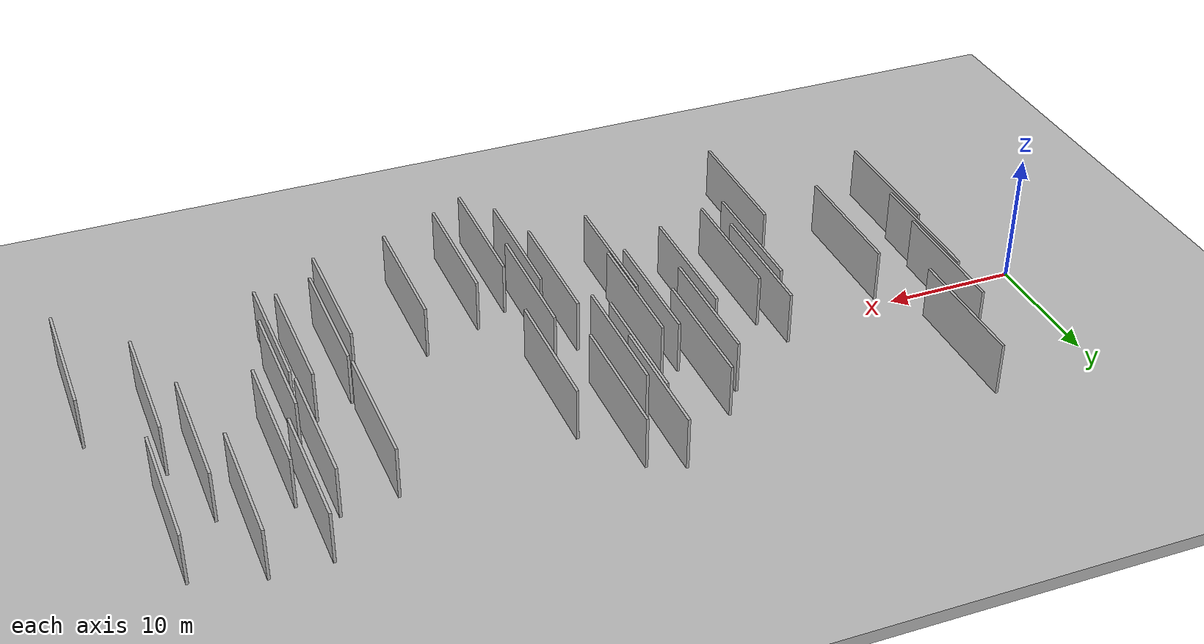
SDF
<?xml version="1.0" encoding="utf-8"?>

<sdf version="1.6">

   <world name="default">

      <gui fullscreen="0">

         <camera name="user_camera">

            <pose>-15 0 4.57585 0 0 0</pose>

            <view_controller>orbit</view_controller>

         </camera>

      </gui>

      <scene>

         <sky>

           <clouds>

             <speed>12</speed>

           </clouds>

         </sky>

         <ambient>0.4 0.4 0.4 1</ambient>

         <background>0.7 0.7 0.7 1</background>

         <shadows>1</shadows>

      </scene>

      <gravity>0 0 -9.8066</gravity>

      <magnetic_field>6e-06 2.3e-05 -4.2e-05</magnetic_field>

      <physics default="0" name="default_physics" type="ode">

         <ode>

            <solver>

               <type>quick</type>

               <iters>10</iters>

               <sor>1.0</sor>

               <use_dynamic_moi_rescaling>0</use_dynamic_moi_rescaling>

            </solver>

            <constraints>

               <cfm>0</cfm>

               <erp>0.2</erp>

               <contact_max_correcting_vel>100</contact_max_correcting_vel>

               <contact_surface_layer>0.001</contact_surface_layer>

            </constraints>

         </ode>

         <max_step_size>0.004</max_step_size>

         <real_time_factor>1</real_time_factor>

         <real_time_update_rate>250</real_time_update_rate>

      </physics>

      <light name="sun" type="directional">

         <cast_shadows>1</cast_shadows>

         <pose>0 0 10 0 0 0</pose>

         <diffuse>0.8 0.8 0.8 1</diffuse>

         <specular>0.2 0.2 0.2 1</specular>

         <attenuation>

            <range>1000</range>

            <constant>0.9</constant>

            <linear>0.01</linear>

            <quadratic>0.001</quadratic>

         </attenuation>

         <direction>-0.5 0.1 -0.9</direction>

      </light>

      <include>

         <name>ground_plane_1</name>

         <uri>model://HANNAS_ground_plane</uri>

         <pose>0 0 0  0 0 0</pose>

      </include>

      <include>

         <name>ground_plane_2</name>

         <uri>model://HANNAS_ground_plane</uri>

         <pose>100 0 0  0 0 0</pose>

      </include>

      <model name="HANNAS_wall_1">

         <static>1</static>

         <pose frame="">37.4780 -3.7580 2.5 0.000000 0.000000 1.570796</pose>

         <link name="link">

            <pose frame="">0 0 2.00 0 0 0</pose>

            <collision name="collision">

               <geometry>

                  <box>

                     <size>10.00 0.2 4.00</size>

                  </box>

               </geometry>

               <max_contacts>10</max_contacts>

               <surface>

                  <contact>

                     <ode/>

                  </contact>

                  <bounce/>

                  <friction>

                     <torsional>

                        <ode/>

                     </torsional>

                     <ode/>

                  </friction>

               </surface>

            </collision>

            <visual name="visual">

               <cast_shadows>0</cast_shadows>

               <geometry>

                  <box>

                     <size>10.00 0.2 4.00</size>

                  </box>

               </geometry>

               <material>

                  <script>

                     <uri>model://HANNAS_wall/materials/scripts</uri>

                     <uri>model://HANNAS_wall/materials/textures</uri>

                     <name>vrc/HANNAS_wall</name>

                  </script>

               </material>

            </visual>

            <self_collide>0</self_collide>

            <enable_wind>0</enable_wind>

            <kinematic>0</kinematic>

         </link>

      </model>

      <model name="HANNAS_wall_2">

         <static>1</static>

         <pose frame="">55.8400 6.3939 2.5 0.000000 0.000000 1.570796</pose>

         <link name="link">

            <pose frame="">0 0 2.00 0 0 0</pose>

            <collision name="collision">

               <geometry>

                  <box>

                     <size>10.00 0.2 4.00</size>

                  </box>

               </geometry>

               <max_contacts>10</max_contacts>

               <surface>

                  <contact>

                     <ode/>

                  </contact>

                  <bounce/>

                  <friction>

                     <torsional>

                        <ode/>

                     </torsional>

                     <ode/>

                  </friction>

               </surface>

            </collision>

            <visual name="visual">

               <cast_shadows>0</cast_shadows>

               <geometry>

                  <box>

                     <size>10.00 0.2 4.00</size>

                  </box>

               </geometry>

               <material>

                  <script>

                     <uri>model://HANNAS_wall/materials/scripts</uri>

                     <uri>model://HANNAS_wall/materials/textures</uri>

                     <name>vrc/HANNAS_wall</name>

                  </script>

               </material>

            </visual>

            <self_collide>0</self_collide>

            <enable_wind>0</enable_wind>

            <kinematic>0</kinematic>

         </link>

      </model>

      <model name="HANNAS_wall_3">

         <static>1</static>

         <pose frame="">20.4294 -3.2497 2.5 0.000000 0.000000 1.570796</pose>

         <link name="link">

            <pose frame="">0 0 2.00 0 0 0</pose>

            <collision name="collision">

               <geometry>

                  <box>

                     <size>10.00 0.2 4.00</size>

                  </box>

               </geometry>

               <max_contacts>10</max_contacts>

               <surface>

                  <contact>

                     <ode/>

                  </contact>

                  <bounce/>

                  <friction>

                     <torsional>

                        <ode/>

                     </torsional>

                     <ode/>

                  </friction>

               </surface>

            </collision>

            <visual name="visual">

               <cast_shadows>0</cast_shadows>

               <geometry>

                  <box>

                     <size>10.00 0.2 4.00</size>

                  </box>

               </geometry>

               <material>

                  <script>

                     <uri>model://HANNAS_wall/materials/scripts</uri>

                     <uri>model://HANNAS_wall/materials/textures</uri>

                     <name>vrc/HANNAS_wall</name>

                  </script>

               </material>

            </visual>

            <self_collide>0</self_collide>

            <enable_wind>0</enable_wind>

            <kinematic>0</kinematic>

         </link>

      </model>

      <model name="HANNAS_wall_4">

         <static>1</static>

         <pose frame="">21.1500 -0.2173 2.5 0.000000 0.000000 1.570796</pose>

         <link name="link">

            <pose frame="">0 0 2.00 0 0 0</pose>

            <collision name="collision">

               <geometry>

                  <box>

                     <size>10.00 0.2 4.00</size>

                  </box>

               </geometry>

               <max_contacts>10</max_contacts>

               <surface>

                  <contact>

                     <ode/>

                  </contact>

                  <bounce/>

                  <friction>

                     <torsional>

                        <ode/>

                     </torsional>

                     <ode/>

                  </friction>

               </surface>

            </collision>

            <visual name="visual">

               <cast_shadows>0</cast_shadows>

               <geometry>

                  <box>

                     <size>10.00 0.2 4.00</size>

                  </box>

               </geometry>

               <material>

                  <script>

                     <uri>model://HANNAS_wall/materials/scripts</uri>

                     <uri>model://HANNAS_wall/materials/textures</uri>

                     <name>vrc/HANNAS_wall</name>

                  </script>

               </material>

            </visual>

            <self_collide>0</self_collide>

            <enable_wind>0</enable_wind>

            <kinematic>0</kinematic>

         </link>

      </model>

      <model name="HANNAS_wall_5">

         <static>1</static>

         <pose frame="">33.4756 9.9640 2.5 0.000000 0.000000 1.570796</pose>

         <link name="link">

            <pose frame="">0 0 2.00 0 0 0</pose>

            <collision name="collision">

               <geometry>

                  <box>

                     <size>10.00 0.2 4.00</size>

                  </box>

               </geometry>

               <max_contacts>10</max_contacts>

               <surface>

                  <contact>

                     <ode/>

                  </contact>

                  <bounce/>

                  <friction>

                     <torsional>

                        <ode/>

                     </torsional>

                     <ode/>

                  </friction>

               </surface>

            </collision>

            <visual name="visual">

               <cast_shadows>0</cast_shadows>

               <geometry>

                  <box>

                     <size>10.00 0.2 4.00</size>

                  </box>

               </geometry>

               <material>

                  <script>

                     <uri>model://HANNAS_wall/materials/scripts</uri>

                     <uri>model://HANNAS_wall/materials/textures</uri>

                     <name>vrc/HANNAS_wall</name>

                  </script>

               </material>

            </visual>

            <self_collide>0</self_collide>

            <enable_wind>0</enable_wind>

            <kinematic>0</kinematic>

         </link>

      </model>

      <model name="HANNAS_wall_6">

         <static>1</static>

         <pose frame="">35.3868 -4.7499 2.5 0.000000 0.000000 1.570796</pose>

         <link name="link">

            <pose frame="">0 0 2.00 0 0 0</pose>

            <collision name="collision">

               <geometry>

                  <box>

                     <size>10.00 0.2 4.00</size>

                  </box>

               </geometry>

               <max_contacts>10</max_contacts>

               <surface>

                  <contact>

                     <ode/>

                  </contact>

                  <bounce/>

                  <friction>

                     <torsional>

                        <ode/>

                     </torsional>

                     <ode/>

                  </friction>

               </surface>

            </collision>

            <visual name="visual">

               <cast_shadows>0</cast_shadows>

               <geometry>

                  <box>

                     <size>10.00 0.2 4.00</size>

                  </box>

               </geometry>

               <material>

                  <script>

                     <uri>model://HANNAS_wall/materials/scripts</uri>

                     <uri>model://HANNAS_wall/materials/textures</uri>

                     <name>vrc/HANNAS_wall</name>

                  </script>

               </material>

            </visual>

            <self_collide>0</self_collide>

            <enable_wind>0</enable_wind>

            <kinematic>0</kinematic>

         </link>

      </model>

      <model name="HANNAS_wall_7">

         <static>1</static>

         <pose frame="">63.2526 3.9304 2.5 0.000000 0.000000 1.570796</pose>

         <link name="link">

            <pose frame="">0 0 2.00 0 0 0</pose>

            <collision name="collision">

               <geometry>

                  <box>

                     <size>10.00 0.2 4.00</size>

                  </box>

               </geometry>

               <max_contacts>10</max_contacts>

               <surface>

                  <contact>

                     <ode/>

                  </contact>

                  <bounce/>

                  <friction>

                     <torsional>

                        <ode/>

                     </torsional>

                     <ode/>

                  </friction>

               </surface>

            </collision>

            <visual name="visual">

               <cast_shadows>0</cast_shadows>

               <geometry>

                  <box>

                     <size>10.00 0.2 4.00</size>

                  </box>

               </geometry>

               <material>

                  <script>

                     <uri>model://HANNAS_wall/materials/scripts</uri>

                     <uri>model://HANNAS_wall/materials/textures</uri>

                     <name>vrc/HANNAS_wall</name>

                  </script>

               </material>

            </visual>

            <self_collide>0</self_collide>

            <enable_wind>0</enable_wind>

            <kinematic>0</kinematic>

         </link>

      </model>

      <model name="HANNAS_wall_8">

         <static>1</static>

         <pose frame="">51.0187 -7.0638 2.5 0.000000 0.000000 1.570796</pose>

         <link name="link">

            <pose frame="">0 0 2.00 0 0 0</pose>

            <collision name="collision">

               <geometry>

                  <box>

                     <size>10.00 0.2 4.00</size>

                  </box>

               </geometry>

               <max_contacts>10</max_contacts>

               <surface>

                  <contact>

                     <ode/>

                  </contact>

                  <bounce/>

                  <friction>

                     <torsional>

                        <ode/>

                     </torsional>

                     <ode/>

                  </friction>

               </surface>

            </collision>

            <visual name="visual">

               <cast_shadows>0</cast_shadows>

               <geometry>

                  <box>

                     <size>10.00 0.2 4.00</size>

                  </box>

               </geometry>

               <material>

                  <script>

                     <uri>model://HANNAS_wall/materials/scripts</uri>

                     <uri>model://HANNAS_wall/materials/textures</uri>

                     <name>vrc/HANNAS_wall</name>

                  </script>

               </material>

            </visual>

            <self_collide>0</self_collide>

            <enable_wind>0</enable_wind>

            <kinematic>0</kinematic>

         </link>

      </model>

      <model name="HANNAS_wall_9">

         <static>1</static>

         <pose frame="">58.2445 4.4541 2.5 0.000000 0.000000 1.570796</pose>

         <link name="link">

            <pose frame="">0 0 2.00 0 0 0</pose>

            <collision name="collision">

               <geometry>

                  <box>

                     <size>10.00 0.2 4.00</size>

                  </box>

               </geometry>

               <max_contacts>10</max_contacts>

               <surface>

                  <contact>

                     <ode/>

                  </contact>

                  <bounce/>

                  <friction>

                     <torsional>

                        <ode/>

                     </torsional>

                     <ode/>

                  </friction>

               </surface>

            </collision>

            <visual name="visual">

               <cast_shadows>0</cast_shadows>

               <geometry>

                  <box>

                     <size>10.00 0.2 4.00</size>

                  </box>

               </geometry>

               <material>

                  <script>

                     <uri>model://HANNAS_wall/materials/scripts</uri>

                     <uri>model://HANNAS_wall/materials/textures</uri>

                     <name>vrc/HANNAS_wall</name>

                  </script>

               </material>

            </visual>

            <self_collide>0</self_collide>

            <enable_wind>0</enable_wind>

            <kinematic>0</kinematic>

         </link>

      </model>

      <model name="HANNAS_wall_10">

         <static>1</static>

         <pose frame="">51.8081 5.9082 2.5 0.000000 0.000000 1.570796</pose>

         <link name="link">

            <pose frame="">0 0 2.00 0 0 0</pose>

            <collision name="collision">

               <geometry>

                  <box>

                     <size>10.00 0.2 4.00</size>

                  </box>

               </geometry>

               <max_contacts>10</max_contacts>

               <surface>

                  <contact>

                     <ode/>

                  </contact>

                  <bounce/>

                  <friction>

                     <torsional>

                        <ode/>

                     </torsional>

                     <ode/>

                  </friction>

               </surface>

            </collision>

            <visual name="visual">

               <cast_shadows>0</cast_shadows>

               <geometry>

                  <box>

                     <size>10.00 0.2 4.00</size>

                  </box>

               </geometry>

               <material>

                  <script>

                     <uri>model://HANNAS_wall/materials/scripts</uri>

                     <uri>model://HANNAS_wall/materials/textures</uri>

                     <name>vrc/HANNAS_wall</name>

                  </script>

               </material>

            </visual>

            <self_collide>0</self_collide>

            <enable_wind>0</enable_wind>

            <kinematic>0</kinematic>

         </link>

      </model>

      <model name="HANNAS_wall_11">

         <static>1</static>

         <pose frame="">38.6336 -11.0143 2.5 0.000000 0.000000 1.570796</pose>

         <link name="link">

            <pose frame="">0 0 2.00 0 0 0</pose>

            <collision name="collision">

               <geometry>

                  <box>

                     <size>10.00 0.2 4.00</size>

                  </box>

               </geometry>

               <max_contacts>10</max_contacts>

               <surface>

                  <contact>

                     <ode/>

                  </contact>

                  <bounce/>

                  <friction>

                     <torsional>

                        <ode/>

                     </torsional>

                     <ode/>

                  </friction>

               </surface>

            </collision>

            <visual name="visual">

               <cast_shadows>0</cast_shadows>

               <geometry>

                  <box>

                     <size>10.00 0.2 4.00</size>

                  </box>

               </geometry>

               <material>

                  <script>

                     <uri>model://HANNAS_wall/materials/scripts</uri>

                     <uri>model://HANNAS_wall/materials/textures</uri>

                     <name>vrc/HANNAS_wall</name>

                  </script>

               </material>

            </visual>

            <self_collide>0</self_collide>

            <enable_wind>0</enable_wind>

            <kinematic>0</kinematic>

         </link>

      </model>

      <model name="HANNAS_wall_12">

         <static>1</static>

         <pose frame="">34.1022 4.6095 2.5 0.000000 0.000000 1.570796</pose>

         <link name="link">

            <pose frame="">0 0 2.00 0 0 0</pose>

            <collision name="collision">

               <geometry>

                  <box>

                     <size>10.00 0.2 4.00</size>

                  </box>

               </geometry>

               <max_contacts>10</max_contacts>

               <surface>

                  <contact>

                     <ode/>

                  </contact>

                  <bounce/>

                  <friction>

                     <torsional>

                        <ode/>

                     </torsional>

                     <ode/>

                  </friction>

               </surface>

            </collision>

            <visual name="visual">

               <cast_shadows>0</cast_shadows>

               <geometry>

                  <box>

                     <size>10.00 0.2 4.00</size>

                  </box>

               </geometry>

               <material>

                  <script>

                     <uri>model://HANNAS_wall/materials/scripts</uri>

                     <uri>model://HANNAS_wall/materials/textures</uri>

                     <name>vrc/HANNAS_wall</name>

                  </script>

               </material>

            </visual>

            <self_collide>0</self_collide>

            <enable_wind>0</enable_wind>

            <kinematic>0</kinematic>

         </link>

      </model>

      <model name="HANNAS_wall_13">

         <static>1</static>

         <pose frame="">56.4788 -0.9302 2.5 0.000000 0.000000 1.570796</pose>

         <link name="link">

            <pose frame="">0 0 2.00 0 0 0</pose>

            <collision name="collision">

               <geometry>

                  <box>

                     <size>10.00 0.2 4.00</size>

                  </box>

               </geometry>

               <max_contacts>10</max_contacts>

               <surface>

                  <contact>

                     <ode/>

                  </contact>

                  <bounce/>

                  <friction>

                     <torsional>

                        <ode/>

                     </torsional>

                     <ode/>

                  </friction>

               </surface>

            </collision>

            <visual name="visual">

               <cast_shadows>0</cast_shadows>

               <geometry>

                  <box>

                     <size>10.00 0.2 4.00</size>

                  </box>

               </geometry>

               <material>

                  <script>

                     <uri>model://HANNAS_wall/materials/scripts</uri>

                     <uri>model://HANNAS_wall/materials/textures</uri>

                     <name>vrc/HANNAS_wall</name>

                  </script>

               </material>

            </visual>

            <self_collide>0</self_collide>

            <enable_wind>0</enable_wind>

            <kinematic>0</kinematic>

         </link>

      </model>

      <model name="HANNAS_wall_14">

         <static>1</static>

         <pose frame="">8.4726 4.3426 2.5 0.000000 0.000000 1.570796</pose>

         <link name="link">

            <pose frame="">0 0 2.00 0 0 0</pose>

            <collision name="collision">

               <geometry>

                  <box>

                     <size>10.00 0.2 4.00</size>

                  </box>

               </geometry>

               <max_contacts>10</max_contacts>

               <surface>

                  <contact>

                     <ode/>

                  </contact>

                  <bounce/>

                  <friction>

                     <torsional>

                        <ode/>

                     </torsional>

                     <ode/>

                  </friction>

               </surface>

            </collision>

            <visual name="visual">

               <cast_shadows>0</cast_shadows>

               <geometry>

                  <box>

                     <size>10.00 0.2 4.00</size>

                  </box>

               </geometry>

               <material>

                  <script>

                     <uri>model://HANNAS_wall/materials/scripts</uri>

                     <uri>model://HANNAS_wall/materials/textures</uri>

                     <name>vrc/HANNAS_wall</name>

                  </script>

               </material>

            </visual>

            <self_collide>0</self_collide>

            <enable_wind>0</enable_wind>

            <kinematic>0</kinematic>

         </link>

      </model>

      <model name="HANNAS_wall_15">

         <static>1</static>

         <pose frame="">10.5096 10.3762 2.5 0.000000 0.000000 1.570796</pose>

         <link name="link">

            <pose frame="">0 0 2.00 0 0 0</pose>

            <collision name="collision">

               <geometry>

                  <box>

                     <size>10.00 0.2 4.00</size>

                  </box>

               </geometry>

               <max_contacts>10</max_contacts>

               <surface>

                  <contact>

                     <ode/>

                  </contact>

                  <bounce/>

                  <friction>

                     <torsional>

                        <ode/>

                     </torsional>

                     <ode/>

                  </friction>

               </surface>

            </collision>

            <visual name="visual">

               <cast_shadows>0</cast_shadows>

               <geometry>

                  <box>

                     <size>10.00 0.2 4.00</size>

                  </box>

               </geometry>

               <material>

                  <script>

                     <uri>model://HANNAS_wall/materials/scripts</uri>

                     <uri>model://HANNAS_wall/materials/textures</uri>

                     <name>vrc/HANNAS_wall</name>

                  </script>

               </material>

            </visual>

            <self_collide>0</self_collide>

            <enable_wind>0</enable_wind>

            <kinematic>0</kinematic>

         </link>

      </model>

      <model name="HANNAS_wall_16">

         <static>1</static>

         <pose frame="">51.9081 -4.6884 2.5 0.000000 0.000000 1.570796</pose>

         <link name="link">

            <pose frame="">0 0 2.00 0 0 0</pose>

            <collision name="collision">

               <geometry>

                  <box>

                     <size>10.00 0.2 4.00</size>

                  </box>

               </geometry>

               <max_contacts>10</max_contacts>

               <surface>

                  <contact>

                     <ode/>

                  </contact>

                  <bounce/>

                  <friction>

                     <torsional>

                        <ode/>

                     </torsional>

                     <ode/>

                  </friction>

               </surface>

            </collision>

            <visual name="visual">

               <cast_shadows>0</cast_shadows>

               <geometry>

                  <box>

                     <size>10.00 0.2 4.00</size>

                  </box>

               </geometry>

               <material>

                  <script>

                     <uri>model://HANNAS_wall/materials/scripts</uri>

                     <uri>model://HANNAS_wall/materials/textures</uri>

                     <name>vrc/HANNAS_wall</name>

                  </script>

               </material>

            </visual>

            <self_collide>0</self_collide>

            <enable_wind>0</enable_wind>

            <kinematic>0</kinematic>

         </link>

      </model>

      <model name="HANNAS_wall_17">

         <static>1</static>

         <pose frame="">39.0416 4.5276 2.5 0.000000 0.000000 1.570796</pose>

         <link name="link">

            <pose frame="">0 0 2.00 0 0 0</pose>

            <collision name="collision">

               <geometry>

                  <box>

                     <size>10.00 0.2 4.00</size>

                  </box>

               </geometry>

               <max_contacts>10</max_contacts>

               <surface>

                  <contact>

                     <ode/>

                  </contact>

                  <bounce/>

                  <friction>

                     <torsional>

                        <ode/>

                     </torsional>

                     <ode/>

                  </friction>

               </surface>

            </collision>

            <visual name="visual">

               <cast_shadows>0</cast_shadows>

               <geometry>

                  <box>

                     <size>10.00 0.2 4.00</size>

                  </box>

               </geometry>

               <material>

                  <script>

                     <uri>model://HANNAS_wall/materials/scripts</uri>

                     <uri>model://HANNAS_wall/materials/textures</uri>

                     <name>vrc/HANNAS_wall</name>

                  </script>

               </material>

            </visual>

            <self_collide>0</self_collide>

            <enable_wind>0</enable_wind>

            <kinematic>0</kinematic>

         </link>

      </model>

      <model name="HANNAS_wall_18">

         <static>1</static>

         <pose frame="">28.5405 5.9136 2.5 0.000000 0.000000 1.570796</pose>

         <link name="link">

            <pose frame="">0 0 2.00 0 0 0</pose>

            <collision name="collision">

               <geometry>

                  <box>

                     <size>10.00 0.2 4.00</size>

                  </box>

               </geometry>

               <max_contacts>10</max_contacts>

               <surface>

                  <contact>

                     <ode/>

                  </contact>

                  <bounce/>

                  <friction>

                     <torsional>

                        <ode/>

                     </torsional>

                     <ode/>

                  </friction>

               </surface>

            </collision>

            <visual name="visual">

               <cast_shadows>0</cast_shadows>

               <geometry>

                  <box>

                     <size>10.00 0.2 4.00</size>

                  </box>

               </geometry>

               <material>

                  <script>

                     <uri>model://HANNAS_wall/materials/scripts</uri>

                     <uri>model://HANNAS_wall/materials/textures</uri>

                     <name>vrc/HANNAS_wall</name>

                  </script>

               </material>

            </visual>

            <self_collide>0</self_collide>

            <enable_wind>0</enable_wind>

            <kinematic>0</kinematic>

         </link>

      </model>

      <model name="HANNAS_wall_19">

         <static>1</static>

         <pose frame="">66.1967 8.9440 2.5 0.000000 0.000000 1.570796</pose>

         <link name="link">

            <pose frame="">0 0 2.00 0 0 0</pose>

            <collision name="collision">

               <geometry>

                  <box>

                     <size>10.00 0.2 4.00</size>

                  </box>

               </geometry>

               <max_contacts>10</max_contacts>

               <surface>

                  <contact>

                     <ode/>

                  </contact>

                  <bounce/>

                  <friction>

                     <torsional>

                        <ode/>

                     </torsional>

                     <ode/>

                  </friction>

               </surface>

            </collision>

            <visual name="visual">

               <cast_shadows>0</cast_shadows>

               <geometry>

                  <box>

                     <size>10.00 0.2 4.00</size>

                  </box>

               </geometry>

               <material>

                  <script>

                     <uri>model://HANNAS_wall/materials/scripts</uri>

                     <uri>model://HANNAS_wall/materials/textures</uri>

                     <name>vrc/HANNAS_wall</name>

                  </script>

               </material>

            </visual>

            <self_collide>0</self_collide>

            <enable_wind>0</enable_wind>

            <kinematic>0</kinematic>

         </link>

      </model>

      <model name="HANNAS_wall_20">

         <static>1</static>

         <pose frame="">69.7482 -6.4881 2.5 0.000000 0.000000 1.570796</pose>

         <link name="link">

            <pose frame="">0 0 2.00 0 0 0</pose>

            <collision name="collision">

               <geometry>

                  <box>

                     <size>10.00 0.2 4.00</size>

                  </box>

               </geometry>

               <max_contacts>10</max_contacts>

               <surface>

                  <contact>

                     <ode/>

                  </contact>

                  <bounce/>

                  <friction>

                     <torsional>

                        <ode/>

                     </torsional>

                     <ode/>

                  </friction>

               </surface>

            </collision>

            <visual name="visual">

               <cast_shadows>0</cast_shadows>

               <geometry>

                  <box>

                     <size>10.00 0.2 4.00</size>

                  </box>

               </geometry>

               <material>

                  <script>

                     <uri>model://HANNAS_wall/materials/scripts</uri>

                     <uri>model://HANNAS_wall/materials/textures</uri>

                     <name>vrc/HANNAS_wall</name>

                  </script>

               </material>

            </visual>

            <self_collide>0</self_collide>

            <enable_wind>0</enable_wind>

            <kinematic>0</kinematic>

         </link>

      </model>

      <model name="HANNAS_wall_21">

         <static>1</static>

         <pose frame="">12.8904 -2.6898 2.5 0.000000 0.000000 1.570796</pose>

         <link name="link">

            <pose frame="">0 0 2.00 0 0 0</pose>

            <collision name="collision">

               <geometry>

                  <box>

                     <size>10.00 0.2 4.00</size>

                  </box>

               </geometry>

               <max_contacts>10</max_contacts>

               <surface>

                  <contact>

                     <ode/>

                  </contact>

                  <bounce/>

                  <friction>

                     <torsional>

                        <ode/>

                     </torsional>

                     <ode/>

                  </friction>

               </surface>

            </collision>

            <visual name="visual">

               <cast_shadows>0</cast_shadows>

               <geometry>

                  <box>

                     <size>10.00 0.2 4.00</size>

                  </box>

               </geometry>

               <material>

                  <script>

                     <uri>model://HANNAS_wall/materials/scripts</uri>

                     <uri>model://HANNAS_wall/materials/textures</uri>

                     <name>vrc/HANNAS_wall</name>

                  </script>

               </material>

            </visual>

            <self_collide>0</self_collide>

            <enable_wind>0</enable_wind>

            <kinematic>0</kinematic>

         </link>

      </model>

      <model name="HANNAS_wall_22">

         <static>1</static>

         <pose frame="">8.1022 0.3116 2.5 0.000000 0.000000 1.570796</pose>

         <link name="link">

            <pose frame="">0 0 2.00 0 0 0</pose>

            <collision name="collision">

               <geometry>

                  <box>

                     <size>10.00 0.2 4.00</size>

                  </box>

               </geometry>

               <max_contacts>10</max_contacts>

               <surface>

                  <contact>

                     <ode/>

                  </contact>

                  <bounce/>

                  <friction>

                     <torsional>

                        <ode/>

                     </torsional>

                     <ode/>

                  </friction>

               </surface>

            </collision>

            <visual name="visual">

               <cast_shadows>0</cast_shadows>

               <geometry>

                  <box>

                     <size>10.00 0.2 4.00</size>

                  </box>

               </geometry>

               <material>

                  <script>

                     <uri>model://HANNAS_wall/materials/scripts</uri>

                     <uri>model://HANNAS_wall/materials/textures</uri>

                     <name>vrc/HANNAS_wall</name>

                  </script>

               </material>

            </visual>

            <self_collide>0</self_collide>

            <enable_wind>0</enable_wind>

            <kinematic>0</kinematic>

         </link>

      </model>

      <model name="HANNAS_wall_23">

         <static>1</static>

         <pose frame="">36.7186 -8.5443 2.5 0.000000 0.000000 1.570796</pose>

         <link name="link">

            <pose frame="">0 0 2.00 0 0 0</pose>

            <collision name="collision">

               <geometry>

                  <box>

                     <size>10.00 0.2 4.00</size>

                  </box>

               </geometry>

               <max_contacts>10</max_contacts>

               <surface>

                  <contact>

                     <ode/>

                  </contact>

                  <bounce/>

                  <friction>

                     <torsional>

                        <ode/>

                     </torsional>

                     <ode/>

                  </friction>

               </surface>

            </collision>

            <visual name="visual">

               <cast_shadows>0</cast_shadows>

               <geometry>

                  <box>

                     <size>10.00 0.2 4.00</size>

                  </box>

               </geometry>

               <material>

                  <script>

                     <uri>model://HANNAS_wall/materials/scripts</uri>

                     <uri>model://HANNAS_wall/materials/textures</uri>

                     <name>vrc/HANNAS_wall</name>

                  </script>

               </material>

            </visual>

            <self_collide>0</self_collide>

            <enable_wind>0</enable_wind>

            <kinematic>0</kinematic>

         </link>

      </model>

      <model name="HANNAS_wall_24">

         <static>1</static>

         <pose frame="">41.1093 -9.6781 2.5 0.000000 0.000000 1.570796</pose>

         <link name="link">

            <pose frame="">0 0 2.00 0 0 0</pose>

            <collision name="collision">

               <geometry>

                  <box>

                     <size>10.00 0.2 4.00</size>

                  </box>

               </geometry>

               <max_contacts>10</max_contacts>

               <surface>

                  <contact>

                     <ode/>

                  </contact>

                  <bounce/>

                  <friction>

                     <torsional>

                        <ode/>

                     </torsional>

                     <ode/>

                  </friction>

               </surface>

            </collision>

            <visual name="visual">

               <cast_shadows>0</cast_shadows>

               <geometry>

                  <box>

                     <size>10.00 0.2 4.00</size>

                  </box>

               </geometry>

               <material>

                  <script>

                     <uri>model://HANNAS_wall/materials/scripts</uri>

                     <uri>model://HANNAS_wall/materials/textures</uri>

                     <name>vrc/HANNAS_wall</name>

                  </script>

               </material>

            </visual>

            <self_collide>0</self_collide>

            <enable_wind>0</enable_wind>

            <kinematic>0</kinematic>

         </link>

      </model>

      <model name="HANNAS_wall_25">

         <static>1</static>

         <pose frame="">55.9995 -4.4200 2.5 0.000000 0.000000 1.570796</pose>

         <link name="link">

            <pose frame="">0 0 2.00 0 0 0</pose>

            <collision name="collision">

               <geometry>

                  <box>

                     <size>10.00 0.2 4.00</size>

                  </box>

               </geometry>

               <max_contacts>10</max_contacts>

               <surface>

                  <contact>

                     <ode/>

                  </contact>

                  <bounce/>

                  <friction>

                     <torsional>

                        <ode/>

                     </torsional>

                     <ode/>

                  </friction>

               </surface>

            </collision>

            <visual name="visual">

               <cast_shadows>0</cast_shadows>

               <geometry>

                  <box>

                     <size>10.00 0.2 4.00</size>

                  </box>

               </geometry>

               <material>

                  <script>

                     <uri>model://HANNAS_wall/materials/scripts</uri>

                     <uri>model://HANNAS_wall/materials/textures</uri>

                     <name>vrc/HANNAS_wall</name>

                  </script>

               </material>

            </visual>

            <self_collide>0</self_collide>

            <enable_wind>0</enable_wind>

            <kinematic>0</kinematic>

         </link>

      </model>

      <model name="HANNAS_wall_26">

         <static>1</static>

         <pose frame="">22.2974 -2.9288 2.5 0.000000 0.000000 1.570796</pose>

         <link name="link">

            <pose frame="">0 0 2.00 0 0 0</pose>

            <collision name="collision">

               <geometry>

                  <box>

                     <size>10.00 0.2 4.00</size>

                  </box>

               </geometry>

               <max_contacts>10</max_contacts>

               <surface>

                  <contact>

                     <ode/>

                  </contact>

                  <bounce/>

                  <friction>

                     <torsional>

                        <ode/>

                     </torsional>

                     <ode/>

                  </friction>

               </surface>

            </collision>

            <visual name="visual">

               <cast_shadows>0</cast_shadows>

               <geometry>

                  <box>

                     <size>10.00 0.2 4.00</size>

                  </box>

               </geometry>

               <material>

                  <script>

                     <uri>model://HANNAS_wall/materials/scripts</uri>

                     <uri>model://HANNAS_wall/materials/textures</uri>

                     <name>vrc/HANNAS_wall</name>

                  </script>

               </material>

            </visual>

            <self_collide>0</self_collide>

            <enable_wind>0</enable_wind>

            <kinematic>0</kinematic>

         </link>

      </model>

      <model name="HANNAS_wall_27">

         <static>1</static>

         <pose frame="">27.0021 3.6657 2.5 0.000000 0.000000 1.570796</pose>

         <link name="link">

            <pose frame="">0 0 2.00 0 0 0</pose>

            <collision name="collision">

               <geometry>

                  <box>

                     <size>10.00 0.2 4.00</size>

                  </box>

               </geometry>

               <max_contacts>10</max_contacts>

               <surface>

                  <contact>

                     <ode/>

                  </contact>

                  <bounce/>

                  <friction>

                     <torsional>

                        <ode/>

                     </torsional>

                     <ode/>

                  </friction>

               </surface>

            </collision>

            <visual name="visual">

               <cast_shadows>0</cast_shadows>

               <geometry>

                  <box>

                     <size>10.00 0.2 4.00</size>

                  </box>

               </geometry>

               <material>

                  <script>

                     <uri>model://HANNAS_wall/materials/scripts</uri>

                     <uri>model://HANNAS_wall/materials/textures</uri>

                     <name>vrc/HANNAS_wall</name>

                  </script>

               </material>

            </visual>

            <self_collide>0</self_collide>

            <enable_wind>0</enable_wind>

            <kinematic>0</kinematic>

         </link>

      </model>

      <model name="HANNAS_wall_28">

         <static>1</static>

         <pose frame="">29.8094 0.0941 2.5 0.000000 0.000000 1.570796</pose>

         <link name="link">

            <pose frame="">0 0 2.00 0 0 0</pose>

            <collision name="collision">

               <geometry>

                  <box>

                     <size>10.00 0.2 4.00</size>

                  </box>

               </geometry>

               <max_contacts>10</max_contacts>

               <surface>

                  <contact>

                     <ode/>

                  </contact>

                  <bounce/>

                  <friction>

                     <torsional>

                        <ode/>

                     </torsional>

                     <ode/>

                  </friction>

               </surface>

            </collision>

            <visual name="visual">

               <cast_shadows>0</cast_shadows>

               <geometry>

                  <box>

                     <size>10.00 0.2 4.00</size>

                  </box>

               </geometry>

               <material>

                  <script>

                     <uri>model://HANNAS_wall/materials/scripts</uri>

                     <uri>model://HANNAS_wall/materials/textures</uri>

                     <name>vrc/HANNAS_wall</name>

                  </script>

               </material>

            </visual>

            <self_collide>0</self_collide>

            <enable_wind>0</enable_wind>

            <kinematic>0</kinematic>

         </link>

      </model>

      <model name="HANNAS_wall_29">

         <static>1</static>

         <pose frame="">65.1948 -1.7407 2.5 0.000000 0.000000 1.570796</pose>

         <link name="link">

            <pose frame="">0 0 2.00 0 0 0</pose>

            <collision name="collision">

               <geometry>

                  <box>

                     <size>10.00 0.2 4.00</size>

                  </box>

               </geometry>

               <max_contacts>10</max_contacts>

               <surface>

                  <contact>

                     <ode/>

                  </contact>

                  <bounce/>

                  <friction>

                     <torsional>

                        <ode/>

                     </torsional>

                     <ode/>

                  </friction>

               </surface>

            </collision>

            <visual name="visual">

               <cast_shadows>0</cast_shadows>

               <geometry>

                  <box>

                     <size>10.00 0.2 4.00</size>

                  </box>

               </geometry>

               <material>

                  <script>

                     <uri>model://HANNAS_wall/materials/scripts</uri>

                     <uri>model://HANNAS_wall/materials/textures</uri>

                     <name>vrc/HANNAS_wall</name>

                  </script>

               </material>

            </visual>

            <self_collide>0</self_collide>

            <enable_wind>0</enable_wind>

            <kinematic>0</kinematic>

         </link>

      </model>

      <model name="HANNAS_wall_30">

         <static>1</static>

         <pose frame="">31.0325 0.0228 2.5 0.000000 0.000000 1.570796</pose>

         <link name="link">

            <pose frame="">0 0 2.00 0 0 0</pose>

            <collision name="collision">

               <geometry>

                  <box>

                     <size>10.00 0.2 4.00</size>

                  </box>

               </geometry>

               <max_contacts>10</max_contacts>

               <surface>

                  <contact>

                     <ode/>

                  </contact>

                  <bounce/>

                  <friction>

                     <torsional>

                        <ode/>

                     </torsional>

                     <ode/>

                  </friction>

               </surface>

            </collision>

            <visual name="visual">

               <cast_shadows>0</cast_shadows>

               <geometry>

                  <box>

                     <size>10.00 0.2 4.00</size>

                  </box>

               </geometry>

               <material>

                  <script>

                     <uri>model://HANNAS_wall/materials/scripts</uri>

                     <uri>model://HANNAS_wall/materials/textures</uri>

                     <name>vrc/HANNAS_wall</name>

                  </script>

               </material>

            </visual>

            <self_collide>0</self_collide>

            <enable_wind>0</enable_wind>

            <kinematic>0</kinematic>

         </link>

      </model>

      <model name="HANNAS_wall_31">

         <static>1</static>

         <pose frame="">61.4835 10.3495 2.5 0.000000 0.000000 1.570796</pose>

         <link name="link">

            <pose frame="">0 0 2.00 0 0 0</pose>

            <collision name="collision">

               <geometry>

                  <box>

                     <size>10.00 0.2 4.00</size>

                  </box>

               </geometry>

               <max_contacts>10</max_contacts>

               <surface>

                  <contact>

                     <ode/>

                  </contact>

                  <bounce/>

                  <friction>

                     <torsional>

                        <ode/>

                     </torsional>

                     <ode/>

                  </friction>

               </surface>

            </collision>

            <visual name="visual">

               <cast_shadows>0</cast_shadows>

               <geometry>

                  <box>

                     <size>10.00 0.2 4.00</size>

                  </box>

               </geometry>

               <material>

                  <script>

                     <uri>model://HANNAS_wall/materials/scripts</uri>

                     <uri>model://HANNAS_wall/materials/textures</uri>

                     <name>vrc/HANNAS_wall</name>

                  </script>

               </material>

            </visual>

            <self_collide>0</self_collide>

            <enable_wind>0</enable_wind>

            <kinematic>0</kinematic>

         </link>

      </model>

      <model name="HANNAS_wall_32">

         <static>1</static>

         <pose frame="">54.6508 -3.6134 2.5 0.000000 0.000000 1.570796</pose>

         <link name="link">

            <pose frame="">0 0 2.00 0 0 0</pose>

            <collision name="collision">

               <geometry>

                  <box>

                     <size>10.00 0.2 4.00</size>

                  </box>

               </geometry>

               <max_contacts>10</max_contacts>

               <surface>

                  <contact>

                     <ode/>

                  </contact>

                  <bounce/>

                  <friction>

                     <torsional>

                        <ode/>

                     </torsional>

                     <ode/>

                  </friction>

               </surface>

            </collision>

            <visual name="visual">

               <cast_shadows>0</cast_shadows>

               <geometry>

                  <box>

                     <size>10.00 0.2 4.00</size>

                  </box>

               </geometry>

               <material>

                  <script>

                     <uri>model://HANNAS_wall/materials/scripts</uri>

                     <uri>model://HANNAS_wall/materials/textures</uri>

                     <name>vrc/HANNAS_wall</name>

                  </script>

               </material>

            </visual>

            <self_collide>0</self_collide>

            <enable_wind>0</enable_wind>

            <kinematic>0</kinematic>

         </link>

      </model>

      <model name="HANNAS_wall_33">

         <static>1</static>

         <pose frame="">45.4653 -7.9610 2.5 0.000000 0.000000 1.570796</pose>

         <link name="link">

            <pose frame="">0 0 2.00 0 0 0</pose>

            <collision name="collision">

               <geometry>

                  <box>

                     <size>10.00 0.2 4.00</size>

                  </box>

               </geometry>

               <max_contacts>10</max_contacts>

               <surface>

                  <contact>

                     <ode/>

                  </contact>

                  <bounce/>

                  <friction>

                     <torsional>

                        <ode/>

                     </torsional>

                     <ode/>

                  </friction>

               </surface>

            </collision>

            <visual name="visual">

               <cast_shadows>0</cast_shadows>

               <geometry>

                  <box>

                     <size>10.00 0.2 4.00</size>

                  </box>

               </geometry>

               <material>

                  <script>

                     <uri>model://HANNAS_wall/materials/scripts</uri>

                     <uri>model://HANNAS_wall/materials/textures</uri>

                     <name>vrc/HANNAS_wall</name>

                  </script>

               </material>

            </visual>

            <self_collide>0</self_collide>

            <enable_wind>0</enable_wind>

            <kinematic>0</kinematic>

         </link>

      </model>

      <model name="HANNAS_wall_34">

         <static>1</static>

         <pose frame="">30.7567 -5.2016 2.5 0.000000 0.000000 1.570796</pose>

         <link name="link">

            <pose frame="">0 0 2.00 0 0 0</pose>

            <collision name="collision">

               <geometry>

                  <box>

                     <size>10.00 0.2 4.00</size>

                  </box>

               </geometry>

               <max_contacts>10</max_contacts>

               <surface>

                  <contact>

                     <ode/>

                  </contact>

                  <bounce/>

                  <friction>

                     <torsional>

                        <ode/>

                     </torsional>

                     <ode/>

                  </friction>

               </surface>

            </collision>

            <visual name="visual">

               <cast_shadows>0</cast_shadows>

               <geometry>

                  <box>

                     <size>10.00 0.2 4.00</size>

                  </box>

               </geometry>

               <material>

                  <script>

                     <uri>model://HANNAS_wall/materials/scripts</uri>

                     <uri>model://HANNAS_wall/materials/textures</uri>

                     <name>vrc/HANNAS_wall</name>

                  </script>

               </material>

            </visual>

            <self_collide>0</self_collide>

            <enable_wind>0</enable_wind>

            <kinematic>0</kinematic>

         </link>

      </model>

      <model name="HANNAS_wall_35">

         <static>1</static>

         <pose frame="">33.2600 5.9417 2.5 0.000000 0.000000 1.570796</pose>

         <link name="link">

            <pose frame="">0 0 2.00 0 0 0</pose>

            <collision name="collision">

               <geometry>

                  <box>

                     <size>10.00 0.2 4.00</size>

                  </box>

               </geometry>

               <max_contacts>10</max_contacts>

               <surface>

                  <contact>

                     <ode/>

                  </contact>

                  <bounce/>

                  <friction>

                     <torsional>

                        <ode/>

                     </torsional>

                     <ode/>

                  </friction>

               </surface>

            </collision>

            <visual name="visual">

               <cast_shadows>0</cast_shadows>

               <geometry>

                  <box>

                     <size>10.00 0.2 4.00</size>

                  </box>

               </geometry>

               <material>

                  <script>

                     <uri>model://HANNAS_wall/materials/scripts</uri>

                     <uri>model://HANNAS_wall/materials/textures</uri>

                     <name>vrc/HANNAS_wall</name>

                  </script>

               </material>

            </visual>

            <self_collide>0</self_collide>

            <enable_wind>0</enable_wind>

            <kinematic>0</kinematic>

         </link>

      </model>

      <model name="HANNAS_wall_36">

         <static>1</static>

         <pose frame="">18.2759 -10.4150 2.5 0.000000 0.000000 1.570796</pose>

         <link name="link">

            <pose frame="">0 0 2.00 0 0 0</pose>

            <collision name="collision">

               <geometry>

                  <box>

                     <size>10.00 0.2 4.00</size>

                  </box>

               </geometry>

               <max_contacts>10</max_contacts>

               <surface>

                  <contact>

                     <ode/>

                  </contact>

                  <bounce/>

                  <friction>

                     <torsional>

                        <ode/>

                     </torsional>

                     <ode/>

                  </friction>

               </surface>

            </collision>

            <visual name="visual">

               <cast_shadows>0</cast_shadows>

               <geometry>

                  <box>

                     <size>10.00 0.2 4.00</size>

                  </box>

               </geometry>

               <material>

                  <script>

                     <uri>model://HANNAS_wall/materials/scripts</uri>

                     <uri>model://HANNAS_wall/materials/textures</uri>

                     <name>vrc/HANNAS_wall</name>

                  </script>

               </material>

            </visual>

            <self_collide>0</self_collide>

            <enable_wind>0</enable_wind>

            <kinematic>0</kinematic>

         </link>

      </model>

      <model name="HANNAS_wall_37">

         <static>1</static>

         <pose frame="">7.6695 -6.2286 2.5 0.000000 0.000000 1.570796</pose>

         <link name="link">

            <pose frame="">0 0 2.00 0 0 0</pose>

            <collision name="collision">

               <geometry>

                  <box>

                     <size>10.00 0.2 4.00</size>

                  </box>

               </geometry>

               <max_contacts>10</max_contacts>

               <surface>

                  <contact>

                     <ode/>

                  </contact>

                  <bounce/>

                  <friction>

                     <torsional>

                        <ode/>

                     </torsional>

                     <ode/>

                  </friction>

               </surface>

            </collision>

            <visual name="visual">

               <cast_shadows>0</cast_shadows>

               <geometry>

                  <box>

                     <size>10.00 0.2 4.00</size>

                  </box>

               </geometry>

               <material>

                  <script>

                     <uri>model://HANNAS_wall/materials/scripts</uri>

                     <uri>model://HANNAS_wall/materials/textures</uri>

                     <name>vrc/HANNAS_wall</name>

                  </script>

               </material>

            </visual>

            <self_collide>0</self_collide>

            <enable_wind>0</enable_wind>

            <kinematic>0</kinematic>

         </link>

      </model>

      <model name="HANNAS_wall_38">

         <static>1</static>

         <pose frame="">57.3315 10.3518 2.5 0.000000 0.000000 1.570796</pose>

         <link name="link">

            <pose frame="">0 0 2.00 0 0 0</pose>

            <collision name="collision">

               <geometry>

                  <box>

                     <size>10.00 0.2 4.00</size>

                  </box>

               </geometry>

               <max_contacts>10</max_contacts>

               <surface>

                  <contact>

                     <ode/>

                  </contact>

                  <bounce/>

                  <friction>

                     <torsional>

                        <ode/>

                     </torsional>

                     <ode/>

                  </friction>

               </surface>

            </collision>

            <visual name="visual">

               <cast_shadows>0</cast_shadows>

               <geometry>

                  <box>

                     <size>10.00 0.2 4.00</size>

                  </box>

               </geometry>

               <material>

                  <script>

                     <uri>model://HANNAS_wall/materials/scripts</uri>

                     <uri>model://HANNAS_wall/materials/textures</uri>

                     <name>vrc/HANNAS_wall</name>

                  </script>

               </material>

            </visual>

            <self_collide>0</self_collide>

            <enable_wind>0</enable_wind>

            <kinematic>0</kinematic>

         </link>

      </model>

      <model name="HANNAS_wall_39">

         <static>1</static>

         <pose frame="">26.1753 -1.7710 2.5 0.000000 0.000000 1.570796</pose>

         <link name="link">

            <pose frame="">0 0 2.00 0 0 0</pose>

            <collision name="collision">

               <geometry>

                  <box>

                     <size>10.00 0.2 4.00</size>

                  </box>

               </geometry>

               <max_contacts>10</max_contacts>

               <surface>

                  <contact>

                     <ode/>

                  </contact>

                  <bounce/>

                  <friction>

                     <torsional>

                        <ode/>

                     </torsional>

                     <ode/>

                  </friction>

               </surface>

            </collision>

            <visual name="visual">

               <cast_shadows>0</cast_shadows>

               <geometry>

                  <box>

                     <size>10.00 0.2 4.00</size>

                  </box>

               </geometry>

               <material>

                  <script>

                     <uri>model://HANNAS_wall/materials/scripts</uri>

                     <uri>model://HANNAS_wall/materials/textures</uri>

                     <name>vrc/HANNAS_wall</name>

                  </script>

               </material>

            </visual>

            <self_collide>0</self_collide>

            <enable_wind>0</enable_wind>

            <kinematic>0</kinematic>

         </link>

      </model>

      <model name="HANNAS_wall_40">

         <static>1</static>

         <pose frame="">35.9398 8.9267 2.5 0.000000 0.000000 1.570796</pose>

         <link name="link">

            <pose frame="">0 0 2.00 0 0 0</pose>

            <collision name="collision">

               <geometry>

                  <box>

                     <size>10.00 0.2 4.00</size>

                  </box>

               </geometry>

               <max_contacts>10</max_contacts>

               <surface>

                  <contact>

                     <ode/>

                  </contact>

                  <bounce/>

                  <friction>

                     <torsional>

                        <ode/>

                     </torsional>

                     <ode/>

                  </friction>

               </surface>

            </collision>

            <visual name="visual">

               <cast_shadows>0</cast_shadows>

               <geometry>

                  <box>

                     <size>10.00 0.2 4.00</size>

                  </box>

               </geometry>

               <material>

                  <script>

                     <uri>model://HANNAS_wall/materials/scripts</uri>

                     <uri>model://HANNAS_wall/materials/textures</uri>

                     <name>vrc/HANNAS_wall</name>

                  </script>

               </material>

            </visual>

            <self_collide>0</self_collide>

            <enable_wind>0</enable_wind>

            <kinematic>0</kinematic>

         </link>

      </model>

   </world>

</sdf>
